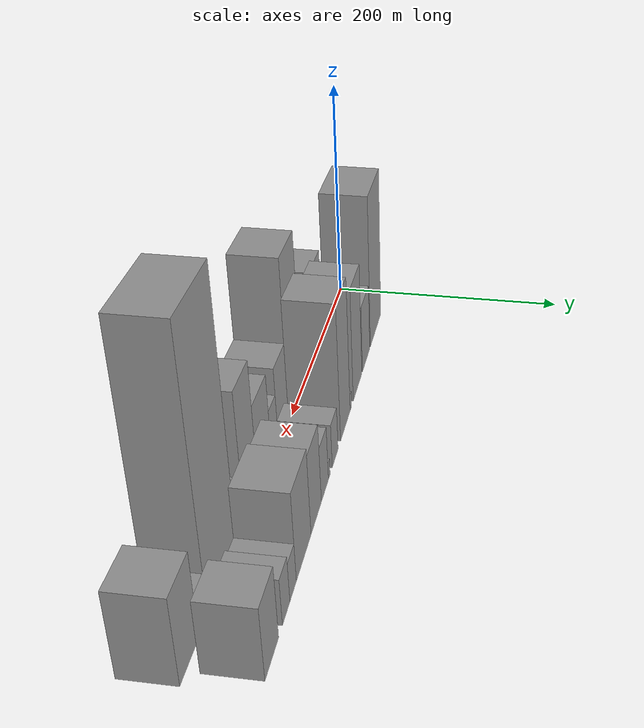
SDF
<sdf version="1.6">
 <world name="default">
  <scene>
   <sky><clouds><speed>12</speed></clouds></sky>
   <ambient>0.4 0.4 0.4 1</ambient>
   <background>0.7 0.7 0.7 1</background>
   <shadows>1</shadows>
  </scene>
  <gravity>0 0 -9.8066</gravity>
  <magnetic_field>6e-06 2.3e-05 -4.2e-05</magnetic_field>
  <physics default="0" name="default_physics" type="ode">
   <ode>
    <solver>
     <type>quick</type>
     <iters>10</iters>
     <sor>1.0</sor>
     <use_dynamic_moi_rescaling>0</use_dynamic_moi_rescaling>
    </solver>
    <constraints>
     <cfm>0</cfm>
     <erp>0.2</erp>
     <contact_max_correcting_vel>100</contact_max_correcting_vel>
     <contact_surface_layer>0.001</contact_surface_layer>
    </constraints>
   </ode>
   <max_step_size>0.004</max_step_size>
   <real_time_factor>1</real_time_factor>
   <real_time_update_rate>250</real_time_update_rate>
  </physics>
  <light name="sun" type="directional">
   <pose>0 0 10 0 0 0</pose>
   <diffuse>0.8 0.8 0.8 1</diffuse>
   <specular>0.2 0.2 0.2 1</specular>
   <attenuation>
    <range>1000</range>
    <constant>0.9</constant>
    <linear>0.01</linear>
    <quadratic>0.001</quadratic>
   </attenuation>
   <direction>-0.5 0.1 -0.9</direction>
  </light>
  <model name="building_1">
   <static>1</static>
   <pose>67.3387 24.5000 0 0.000000 0.000000 1.570796</pose>
   <link name="link">
    <pose>0 0 72.00 0 0 0</pose>
    <collision name="collision"><geometry><box><size>40.0000 54.6774 144.0000</size></box></geometry></collision>
    <visual name="visual">
     <cast_shadows>0</cast_shadows>
     <geometry><box><size>40.0000 54.6774 144.0000</size></box></geometry>
     <material>
      <script>
       <uri>model://grey_wall/materials/scripts</uri>
       <uri>model://grey_wall/materials/textures</uri>
       <name>vrc/grey_wall</name>
      </script>
     </material>
    </visual>
   </link>
  </model>
  <model name="building_2">
   <static>1</static>
   <pose>115.3462 24.5000 0 0.000000 0.000000 1.570796</pose>
   <link name="link">
    <pose>0 0 31.50 0 0 0</pose>
    <collision name="collision"><geometry><box><size>40.0000 35.3375 63.0000</size></box></geometry></collision>
    <visual name="visual">
     <cast_shadows>0</cast_shadows>
     <geometry><box><size>40.0000 35.3375 63.0000</size></box></geometry>
     <material>
      <script>
       <uri>model://grey_wall/materials/scripts</uri>
       <uri>model://grey_wall/materials/textures</uri>
       <name>vrc/grey_wall</name>
      </script>
     </material>
    </visual>
   </link>
  </model>
  <model name="building_3">
   <static>1</static>
   <pose>155.4656 24.5000 0 0.000000 0.000000 1.570796</pose>
   <link name="link">
    <pose>0 0 52.50 0 0 0</pose>
    <collision name="collision"><geometry><box><size>40.0000 38.9012 105.0000</size></box></geometry></collision>
    <visual name="visual">
     <cast_shadows>0</cast_shadows>
     <geometry><box><size>40.0000 38.9012 105.0000</size></box></geometry>
     <material>
      <script>
       <uri>model://grey_wall/materials/scripts</uri>
       <uri>model://grey_wall/materials/textures</uri>
       <name>vrc/grey_wall</name>
      </script>
     </material>
    </visual>
   </link>
  </model>
  <model name="building_4">
   <static>1</static>
   <pose>185.1251 24.5000 0 0.000000 0.000000 1.570796</pose>
   <link name="link">
    <pose>0 0 7.50 0 0 0</pose>
    <collision name="collision"><geometry><box><size>40.0000 6.4178 15.0000</size></box></geometry></collision>
    <visual name="visual">
     <cast_shadows>0</cast_shadows>
     <geometry><box><size>40.0000 6.4178 15.0000</size></box></geometry>
     <material>
      <script>
       <uri>model://grey_wall/materials/scripts</uri>
       <uri>model://grey_wall/materials/textures</uri>
       <name>vrc/grey_wall</name>
      </script>
     </material>
    </visual>
   </link>
  </model>
  <model name="building_5">
   <static>1</static>
   <pose>207.8693 24.5000 0 0.000000 0.000000 1.570796</pose>
   <link name="link">
    <pose>0 0 61.50 0 0 0</pose>
    <collision name="collision"><geometry><box><size>40.0000 39.0706 123.0000</size></box></geometry></collision>
    <visual name="visual">
     <cast_shadows>0</cast_shadows>
     <geometry><box><size>40.0000 39.0706 123.0000</size></box></geometry>
     <material>
      <script>
       <uri>model://grey_wall/materials/scripts</uri>
       <uri>model://grey_wall/materials/textures</uri>
       <name>vrc/grey_wall</name>
      </script>
     </material>
    </visual>
   </link>
  </model>
  <model name="building_6">
   <static>1</static>
   <pose>248.5133 24.5000 0 0.000000 0.000000 1.570796</pose>
   <link name="link">
    <pose>0 0 19.50 0 0 0</pose>
    <collision name="collision"><geometry><box><size>40.0000 22.2174 39.0000</size></box></geometry></collision>
    <visual name="visual">
     <cast_shadows>0</cast_shadows>
     <geometry><box><size>40.0000 22.2174 39.0000</size></box></geometry>
     <material>
      <script>
       <uri>model://grey_wall/materials/scripts</uri>
       <uri>model://grey_wall/materials/textures</uri>
       <name>vrc/grey_wall</name>
      </script>
     </material>
    </visual>
   </link>
  </model>
  <model name="building_7">
   <static>1</static>
   <pose>270.6315 24.5000 0 0.000000 0.000000 1.570796</pose>
   <link name="link">
    <pose>0 0 7.50 0 0 0</pose>
    <collision name="collision"><geometry><box><size>40.0000 6.0190 15.0000</size></box></geometry></collision>
    <visual name="visual">
     <cast_shadows>0</cast_shadows>
     <geometry><box><size>40.0000 6.0190 15.0000</size></box></geometry>
     <material>
      <script>
       <uri>model://grey_wall/materials/scripts</uri>
       <uri>model://grey_wall/materials/textures</uri>
       <name>vrc/grey_wall</name>
      </script>
     </material>
    </visual>
   </link>
  </model>
  <model name="building_8">
   <static>1</static>
   <pose>286.0409 24.5000 0 0.000000 0.000000 1.570796</pose>
   <link name="link">
    <pose>0 0 24.00 0 0 0</pose>
    <collision name="collision"><geometry><box><size>40.0000 24.7998 48.0000</size></box></geometry></collision>
    <visual name="visual">
     <cast_shadows>0</cast_shadows>
     <geometry><box><size>40.0000 24.7998 48.0000</size></box></geometry>
     <material>
      <script>
       <uri>model://grey_wall/materials/scripts</uri>
       <uri>model://grey_wall/materials/textures</uri>
       <name>vrc/grey_wall</name>
      </script>
     </material>
    </visual>
   </link>
  </model>
  <model name="building_9">
   <static>1</static>
   <pose>315.7480 24.5000 0 0.000000 0.000000 1.570796</pose>
   <link name="link">
    <pose>0 0 34.50 0 0 0</pose>
    <collision name="collision"><geometry><box><size>40.0000 34.6144 69.0000</size></box></geometry></collision>
    <visual name="visual">
     <cast_shadows>0</cast_shadows>
     <geometry><box><size>40.0000 34.6144 69.0000</size></box></geometry>
     <material>
      <script>
       <uri>model://grey_wall/materials/scripts</uri>
       <uri>model://grey_wall/materials/textures</uri>
       <name>vrc/grey_wall</name>
      </script>
     </material>
    </visual>
   </link>
  </model>
  <model name="building_10">
   <static>1</static>
   <pose>355.4425 24.5000 0 0.000000 0.000000 1.570796</pose>
   <link name="link">
    <pose>0 0 37.50 0 0 0</pose>
    <collision name="collision"><geometry><box><size>40.0000 44.7748 75.0000</size></box></geometry></collision>
    <visual name="visual">
     <cast_shadows>0</cast_shadows>
     <geometry><box><size>40.0000 44.7748 75.0000</size></box></geometry>
     <material>
      <script>
       <uri>model://grey_wall/materials/scripts</uri>
       <uri>model://grey_wall/materials/textures</uri>
       <name>vrc/grey_wall</name>
      </script>
     </material>
    </visual>
   </link>
  </model>
  <model name="building_11">
   <static>1</static>
   <pose>387.0207 24.5000 0 0.000000 0.000000 1.570796</pose>
   <link name="link">
    <pose>0 0 16.50 0 0 0</pose>
    <collision name="collision"><geometry><box><size>40.0000 18.3817 33.0000</size></box></geometry></collision>
    <visual name="visual">
     <cast_shadows>0</cast_shadows>
     <geometry><box><size>40.0000 18.3817 33.0000</size></box></geometry>
     <material>
      <script>
       <uri>model://grey_wall/materials/scripts</uri>
       <uri>model://grey_wall/materials/textures</uri>
       <name>vrc/grey_wall</name>
      </script>
     </material>
    </visual>
   </link>
  </model>
  <model name="building_12">
   <static>1</static>
   <pose>406.3559 24.5000 0 0.000000 0.000000 1.570796</pose>
   <link name="link">
    <pose>0 0 19.50 0 0 0</pose>
    <collision name="collision"><geometry><box><size>40.0000 20.2887 39.0000</size></box></geometry></collision>
    <visual name="visual">
     <cast_shadows>0</cast_shadows>
     <geometry><box><size>40.0000 20.2887 39.0000</size></box></geometry>
     <material>
      <script>
       <uri>model://grey_wall/materials/scripts</uri>
       <uri>model://grey_wall/materials/textures</uri>
       <name>vrc/grey_wall</name>
      </script>
     </material>
    </visual>
   </link>
  </model>
  <model name="building_13">
   <static>1</static>
   <pose>443.6875 24.5000 0 0.000000 0.000000 1.570796</pose>
   <link name="link">
    <pose>0 0 30.00 0 0 0</pose>
    <collision name="collision"><geometry><box><size>40.0000 34.3745 60.0000</size></box></geometry></collision>
    <visual name="visual">
     <cast_shadows>0</cast_shadows>
     <geometry><box><size>40.0000 34.3745 60.0000</size></box></geometry>
     <material>
      <script>
       <uri>model://grey_wall/materials/scripts</uri>
       <uri>model://grey_wall/materials/textures</uri>
       <name>vrc/grey_wall</name>
      </script>
     </material>
    </visual>
   </link>
  </model>
  <model name="building_14">
   <static>1</static>
   <pose>47.8521 -24.5000 0 0.000000 0.000000 1.570796</pose>
   <link name="link">
    <pose>0 0 15.00 0 0 0</pose>
    <collision name="collision"><geometry><box><size>40.0000 15.7043 30.0000</size></box></geometry></collision>
    <visual name="visual">
     <cast_shadows>0</cast_shadows>
     <geometry><box><size>40.0000 15.7043 30.0000</size></box></geometry>
     <material>
      <script>
       <uri>model://grey_wall/materials/scripts</uri>
       <uri>model://grey_wall/materials/textures</uri>
       <name>vrc/grey_wall</name>
      </script>
     </material>
    </visual>
   </link>
  </model>
  <model name="building_15">
   <static>1</static>
   <pose>60.0097 -24.5000 0 0.000000 0.000000 1.570796</pose>
   <link name="link">
    <pose>0 0 10.50 0 0 0</pose>
    <collision name="collision"><geometry><box><size>40.0000 8.6108 21.0000</size></box></geometry></collision>
    <visual name="visual">
     <cast_shadows>0</cast_shadows>
     <geometry><box><size>40.0000 8.6108 21.0000</size></box></geometry>
     <material>
      <script>
       <uri>model://grey_wall/materials/scripts</uri>
       <uri>model://grey_wall/materials/textures</uri>
       <name>vrc/grey_wall</name>
      </script>
     </material>
    </visual>
   </link>
  </model>
  <model name="building_16">
   <static>1</static>
   <pose>84.3087 -24.5000 0 0.000000 0.000000 1.570796</pose>
   <link name="link">
    <pose>0 0 37.50 0 0 0</pose>
    <collision name="collision"><geometry><box><size>40.0000 39.9873 75.0000</size></box></geometry></collision>
    <visual name="visual">
     <cast_shadows>0</cast_shadows>
     <geometry><box><size>40.0000 39.9873 75.0000</size></box></geometry>
     <material>
      <script>
       <uri>model://grey_wall/materials/scripts</uri>
       <uri>model://grey_wall/materials/textures</uri>
       <name>vrc/grey_wall</name>
      </script>
     </material>
    </visual>
   </link>
  </model>
  <model name="building_17">
   <static>1</static>
   <pose>113.7054 -24.5000 0 0.000000 0.000000 1.570796</pose>
   <link name="link">
    <pose>0 0 18.00 0 0 0</pose>
    <collision name="collision"><geometry><box><size>40.0000 18.8061 36.0000</size></box></geometry></collision>
    <visual name="visual">
     <cast_shadows>0</cast_shadows>
     <geometry><box><size>40.0000 18.8061 36.0000</size></box></geometry>
     <material>
      <script>
       <uri>model://grey_wall/materials/scripts</uri>
       <uri>model://grey_wall/materials/textures</uri>
       <name>vrc/grey_wall</name>
      </script>
     </material>
    </visual>
   </link>
  </model>
  <model name="building_18">
   <static>1</static>
   <pose>136.1593 -24.5000 0 0.000000 0.000000 1.570796</pose>
   <link name="link">
    <pose>0 0 22.50 0 0 0</pose>
    <collision name="collision"><geometry><box><size>40.0000 26.1017 45.0000</size></box></geometry></collision>
    <visual name="visual">
     <cast_shadows>0</cast_shadows>
     <geometry><box><size>40.0000 26.1017 45.0000</size></box></geometry>
     <material>
      <script>
       <uri>model://grey_wall/materials/scripts</uri>
       <uri>model://grey_wall/materials/textures</uri>
       <name>vrc/grey_wall</name>
      </script>
     </material>
    </visual>
   </link>
  </model>
  <model name="building_19">
   <static>1</static>
   <pose>171.4596 -24.5000 0 0.000000 0.000000 1.570796</pose>
   <link name="link">
    <pose>0 0 69.00 0 0 0</pose>
    <collision name="collision"><geometry><box><size>40.0000 44.4990 138.0000</size></box></geometry></collision>
    <visual name="visual">
     <cast_shadows>0</cast_shadows>
     <geometry><box><size>40.0000 44.4990 138.0000</size></box></geometry>
     <material>
      <script>
       <uri>model://grey_wall/materials/scripts</uri>
       <uri>model://grey_wall/materials/textures</uri>
       <name>vrc/grey_wall</name>
      </script>
     </material>
    </visual>
   </link>
  </model>
  <model name="building_20">
   <static>1</static>
   <pose>211.1219 -24.5000 0 0.000000 0.000000 1.570796</pose>
   <link name="link">
    <pose>0 0 31.50 0 0 0</pose>
    <collision name="collision"><geometry><box><size>40.0000 34.8255 63.0000</size></box></geometry></collision>
    <visual name="visual">
     <cast_shadows>0</cast_shadows>
     <geometry><box><size>40.0000 34.8255 63.0000</size></box></geometry>
     <material>
      <script>
       <uri>model://grey_wall/materials/scripts</uri>
       <uri>model://grey_wall/materials/textures</uri>
       <name>vrc/grey_wall</name>
      </script>
     </material>
    </visual>
   </link>
  </model>
  <model name="building_21">
   <static>1</static>
   <pose>239.0054 -24.5000 0 0.000000 0.000000 1.570796</pose>
   <link name="link">
    <pose>0 0 19.50 0 0 0</pose>
    <collision name="collision"><geometry><box><size>40.0000 20.9414 39.0000</size></box></geometry></collision>
    <visual name="visual">
     <cast_shadows>0</cast_shadows>
     <geometry><box><size>40.0000 20.9414 39.0000</size></box></geometry>
     <material>
      <script>
       <uri>model://grey_wall/materials/scripts</uri>
       <uri>model://grey_wall/materials/textures</uri>
       <name>vrc/grey_wall</name>
      </script>
     </material>
    </visual>
   </link>
  </model>
  <model name="building_22">
   <static>1</static>
   <pose>269.1358 -24.5000 0 0.000000 0.000000 1.570796</pose>
   <link name="link">
    <pose>0 0 36.00 0 0 0</pose>
    <collision name="collision"><geometry><box><size>40.0000 39.3194 72.0000</size></box></geometry></collision>
    <visual name="visual">
     <cast_shadows>0</cast_shadows>
     <geometry><box><size>40.0000 39.3194 72.0000</size></box></geometry>
     <material>
      <script>
       <uri>model://grey_wall/materials/scripts</uri>
       <uri>model://grey_wall/materials/textures</uri>
       <name>vrc/grey_wall</name>
      </script>
     </material>
    </visual>
   </link>
  </model>
  <model name="building_23">
   <static>1</static>
   <pose>307.4541 -24.5000 0 0.000000 0.000000 1.570796</pose>
   <link name="link">
    <pose>0 0 55.50 0 0 0</pose>
    <collision name="collision"><geometry><box><size>40.0000 37.3172 111.0000</size></box></geometry></collision>
    <visual name="visual">
     <cast_shadows>0</cast_shadows>
     <geometry><box><size>40.0000 37.3172 111.0000</size></box></geometry>
     <material>
      <script>
       <uri>model://grey_wall/materials/scripts</uri>
       <uri>model://grey_wall/materials/textures</uri>
       <name>vrc/grey_wall</name>
      </script>
     </material>
    </visual>
   </link>
  </model>
  <model name="building_24">
   <static>1</static>
   <pose>336.6369 -24.5000 0 0.000000 0.000000 1.570796</pose>
   <link name="link">
    <pose>0 0 19.50 0 0 0</pose>
    <collision name="collision"><geometry><box><size>40.0000 21.0484 39.0000</size></box></geometry></collision>
    <visual name="visual">
     <cast_shadows>0</cast_shadows>
     <geometry><box><size>40.0000 21.0484 39.0000</size></box></geometry>
     <material>
      <script>
       <uri>model://grey_wall/materials/scripts</uri>
       <uri>model://grey_wall/materials/textures</uri>
       <name>vrc/grey_wall</name>
      </script>
     </material>
    </visual>
   </link>
  </model>
  <model name="building_25">
   <static>1</static>
   <pose>381.0954 -24.5000 0 0.000000 0.000000 1.570796</pose>
   <link name="link">
    <pose>0 0 111.00 0 0 0</pose>
    <collision name="collision"><geometry><box><size>40.0000 67.8686 222.0000</size></box></geometry></collision>
    <visual name="visual">
     <cast_shadows>0</cast_shadows>
     <geometry><box><size>40.0000 67.8686 222.0000</size></box></geometry>
     <material>
      <script>
       <uri>model://grey_wall/materials/scripts</uri>
       <uri>model://grey_wall/materials/textures</uri>
       <name>vrc/grey_wall</name>
      </script>
     </material>
    </visual>
   </link>
  </model>
  <model name="building_26">
   <static>1</static>
   <pose>424.4022 -24.5000 0 0.000000 0.000000 1.570796</pose>
   <link name="link">
    <pose>0 0 18.00 0 0 0</pose>
    <collision name="collision"><geometry><box><size>40.0000 18.7449 36.0000</size></box></geometry></collision>
    <visual name="visual">
     <cast_shadows>0</cast_shadows>
     <geometry><box><size>40.0000 18.7449 36.0000</size></box></geometry>
     <material>
      <script>
       <uri>model://grey_wall/materials/scripts</uri>
       <uri>model://grey_wall/materials/textures</uri>
       <name>vrc/grey_wall</name>
      </script>
     </material>
    </visual>
   </link>
  </model>
  <model name="building_27">
   <static>1</static>
   <pose>452.9117 -24.5000 0 0.000000 0.000000 1.570796</pose>
   <link name="link">
    <pose>0 0 36.00 0 0 0</pose>
    <collision name="collision"><geometry><box><size>40.0000 38.2742 72.0000</size></box></geometry></collision>
    <visual name="visual">
     <cast_shadows>0</cast_shadows>
     <geometry><box><size>40.0000 38.2742 72.0000</size></box></geometry>
     <material>
      <script>
       <uri>model://grey_wall/materials/scripts</uri>
       <uri>model://grey_wall/materials/textures</uri>
       <name>vrc/grey_wall</name>
      </script>
     </material>
    </visual>
   </link>
  </model>
 </world>
</sdf>
